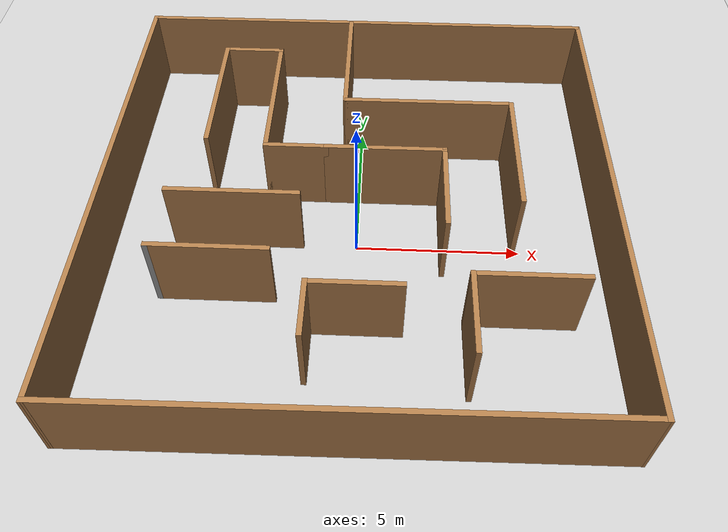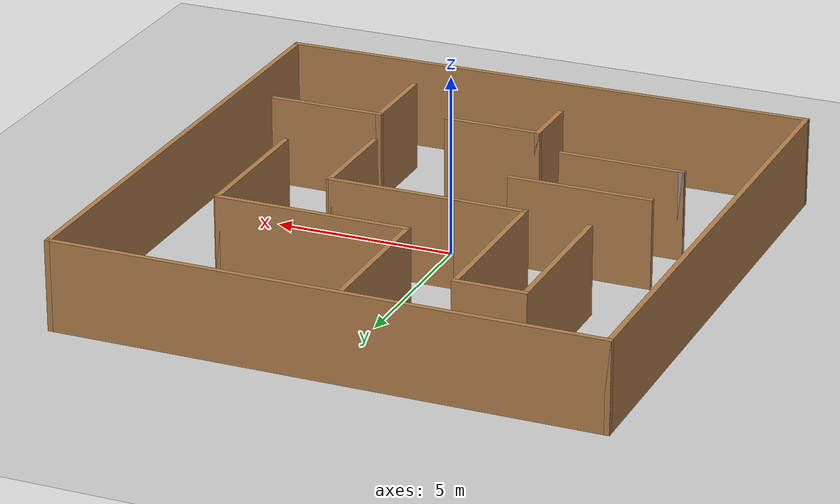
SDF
<sdf version="1.7">
 <world name="default">
  <light name="sun" type="directional">
   <pose>0 0 10 0 -0 0</pose>
   <diffuse>0.8 0.8 0.8 1</diffuse>
   <specular>0.2 0.2 0.2 1</specular>
   <attenuation>
    <range>1000</range>
    <constant>0.9</constant>
    <linear>0.01</linear>
    <quadratic>0.001</quadratic>
   </attenuation>
   <direction>-0.5 0.1 -0.9</direction>
   <spot><inner_angle>0</inner_angle><outer_angle>0</outer_angle><falloff>0</falloff></spot>
  </light>
  <model name="ground_plane">
   <static>1</static>
   <link name="link">
    <collision name="collision">
     <geometry><plane><normal>0 0 1</normal><size>100 100</size></plane></geometry>
     <surface><friction><ode><mu>100</mu><mu2>50</mu2></ode></friction></surface>
    </collision>
    <visual name="visual">
     <cast_shadows>0</cast_shadows>
     <geometry><plane><normal>0 0 1</normal><size>100 100</size></plane></geometry>
     <material>
      <script><uri>file://media/materials/scripts/gazebo.material</uri><name>Gazebo/Grey</name></script>
     </material>
    </visual>
   </link>
  </model>
  <gravity>0 0 -9.8</gravity>
  <magnetic_field>6e-06 2.3e-05 -4.2e-05</magnetic_field>
  <atmosphere type="adiabatic"/>
  <physics type="ode">
   <max_step_size>0.001</max_step_size>
   <real_time_factor>1</real_time_factor>
   <real_time_update_rate>1000</real_time_update_rate>
  </physics>
  <scene><ambient>0.4 0.4 0.4 1</ambient><background>0.7 0.7 0.7 1</background><shadows>1</shadows></scene>
  <spherical_coordinates>
   <surface_model>EARTH_WGS84</surface_model>
   <latitude_deg>0</latitude_deg>
   <longitude_deg>0</longitude_deg>
   <elevation>0</elevation>
   <heading_deg>0</heading_deg>
  </spherical_coordinates>
  <model name="world_15x15">
   <pose>-0.030758 0.768555 0 0 -0 0</pose>
   <link name="Wall_15">
    <collision name="Wall_15_Collision">
     <geometry><box><size>15.15 0.15 2.5</size></box></geometry>
     <pose>0 0 1.25 0 -0 0</pose>
    </collision>
    <visual name="Wall_15_Visual">
     <pose>0 0 1.25 0 -0 0</pose>
     <geometry><box><size>15.15 0.15 2.5</size></box></geometry>
     <material>
      <script><uri>file://media/materials/scripts/gazebo.material</uri><name>Gazebo/Wood</name></script>
      <ambient>1 1 1 1</ambient>
     </material>
     <meta><layer>0</layer></meta>
    </visual>
    <pose>0 7.50037 0 0 -0 0</pose>
   </link>
   <link name="Wall_22">
    <collision name="Wall_22_Collision">
     <geometry><box><size>15 0.15 2.5</size></box></geometry>
     <pose>0 0 1.25 0 -0 0</pose>
    </collision>
    <visual name="Wall_22_Visual">
     <pose>0 0 1.25 0 -0 0</pose>
     <geometry><box><size>15 0.15 2.5</size></box></geometry>
     <material>
      <script><uri>file://media/materials/scripts/gazebo.material</uri><name>Gazebo/Wood</name></script>
      <ambient>1 1 1 1</ambient>
     </material>
     <meta><layer>0</layer></meta>
    </visual>
    <pose>7.5 0.075373 0 0 -0 -1.5708</pose>
   </link>
   <link name="Wall_24">
    <collision name="Wall_24_Collision">
     <geometry><box><size>15.1508 0.15 2.5</size></box></geometry>
     <pose>0 0 1.25 0 -0 0</pose>
    </collision>
    <visual name="Wall_24_Visual">
     <pose>0 0 1.25 0 -0 0</pose>
     <geometry><box><size>15.1508 0.15 2.5</size></box></geometry>
     <material>
      <script><uri>file://media/materials/scripts/gazebo.material</uri><name>Gazebo/Wood</name></script>
      <ambient>1 1 1 1</ambient>
     </material>
     <meta><layer>0</layer></meta>
    </visual>
    <pose>0 -7.42463 0 0 -0 -3.13159</pose>
   </link>
   <link name="Wall_26">
    <collision name="Wall_26_Collision">
     <geometry><box><size>15.15 0.15 2.5</size></box></geometry>
     <pose>0 0 1.25 0 -0 0</pose>
    </collision>
    <visual name="Wall_26_Visual">
     <pose>0 0 1.25 0 -0 0</pose>
     <geometry><box><size>15.15 0.15 2.5</size></box></geometry>
     <material>
      <script><uri>file://media/materials/scripts/gazebo.material</uri><name>Gazebo/Wood</name></script>
      <ambient>1 1 1 1</ambient>
     </material>
     <meta><layer>0</layer></meta>
    </visual>
    <pose>-7.5 0.000373 0 0 -0 -1.5708</pose>
   </link>
   <link name="Wall_28">
    <collision name="Wall_28_Collision">
     <geometry><box><size>4.25 0.15 2.5</size></box></geometry>
     <pose>0 0 1.25 0 -0 0</pose>
    </collision>
    <visual name="Wall_28_Visual">
     <pose>0 0 1.25 0 -0 0</pose>
     <geometry><box><size>4.25 0.15 2.5</size></box></geometry>
     <material>
      <script><uri>file://media/materials/scripts/gazebo.material</uri><name>Gazebo/Wood</name></script>
      <ambient>1 1 1 1</ambient>
     </material>
     <meta><layer>0</layer></meta>
    </visual>
    <pose>-0.496601 5.39757 0 0 -0 -1.5708</pose>
   </link>
   <link name="Wall_29">
    <collision name="Wall_29_Collision">
     <geometry><box><size>5.40695 0.15 2.5</size></box></geometry>
     <pose>0 0 1.25 0 -0 0</pose>
    </collision>
    <visual name="Wall_29_Visual">
     <pose>0 0 1.25 0 -0 0</pose>
     <geometry><box><size>5.40695 0.15 2.5</size></box></geometry>
     <material>
      <script><uri>file://media/materials/scripts/gazebo.material</uri><name>Gazebo/Wood</name></script>
      <ambient>1 1 1 1</ambient>
     </material>
     <meta><layer>0</layer></meta>
    </visual>
    <pose>2.1784 3.34757 0 0 -0 0</pose>
   </link>
   <link name="Wall_30">
    <collision name="Wall_30_Collision">
     <geometry><box><size>4.25 0.15 2.5</size></box></geometry>
     <pose>0 0 1.25 0 -0 0</pose>
    </collision>
    <visual name="Wall_30_Visual">
     <pose>0 0 1.25 0 -0 0</pose>
     <geometry><box><size>4.25 0.15 2.5</size></box></geometry>
     <material>
      <script><uri>file://media/materials/scripts/gazebo.material</uri><name>Gazebo/Wood</name></script>
      <ambient>1 1 1 1</ambient>
     </material>
     <meta><layer>0</layer></meta>
    </visual>
    <pose>4.80687 1.29757 0 0 -0 -1.5708</pose>
   </link>
   <link name="Wall_37">
    <collision name="Wall_37_Collision">
     <geometry><box><size>2.75 0.15 2.5</size></box></geometry>
     <pose>0 0 1.25 0 -0 0</pose>
    </collision>
    <visual name="Wall_37_Visual">
     <pose>0 0 1.25 0 -0 0</pose>
     <geometry><box><size>2.75 0.15 2.5</size></box></geometry>
     <material>
      <script><uri>file://media/materials/scripts/gazebo.material</uri><name>Gazebo/Wood</name></script>
      <ambient>1 1 1 1</ambient>
     </material>
     <meta><layer>0</layer></meta>
    </visual>
    <pose>0.10134 -3.83432 0 0 -0 3.14159</pose>
   </link>
   <link name="Wall_38">
    <collision name="Wall_38_Collision">
     <geometry><box><size>1.75 0.15 2.5</size></box></geometry>
     <pose>0 0 1.25 0 -0 0</pose>
    </collision>
    <visual name="Wall_38_Visual">
     <pose>0 0 1.25 0 -0 0</pose>
     <geometry><box><size>1.75 0.15 2.5</size></box></geometry>
     <material>
      <script><uri>file://media/materials/scripts/gazebo.material</uri><name>Gazebo/Wood</name></script>
      <ambient>1 1 1 1</ambient>
     </material>
     <meta><layer>0</layer></meta>
    </visual>
    <pose>-1.19866 -4.63432 0 0 -0 -1.5708</pose>
   </link>
   <link name="Wall_43">
    <collision name="Wall_43_Collision">
     <geometry><box><size>3.25 0.15 2.5</size></box></geometry>
     <pose>0 0 1.25 0 -0 0</pose>
    </collision>
    <visual name="Wall_43_Visual">
     <pose>0 0 1.25 0 -0 0</pose>
     <geometry><box><size>3.25 0.15 2.5</size></box></geometry>
     <material>
      <script><uri>file://media/materials/scripts/gazebo.material</uri><name>Gazebo/Wood</name></script>
      <ambient>1 1 1 1</ambient>
     </material>
     <meta><layer>0</layer></meta>
    </visual>
    <pose>4.78432 -3.39453 0 0 -0 3.14159</pose>
   </link>
   <link name="Wall_44">
    <collision name="Wall_44_Collision">
     <geometry><box><size>2.5 0.15 2.5</size></box></geometry>
     <pose>0 0 1.25 0 -0 0</pose>
    </collision>
    <visual name="Wall_44_Visual">
     <pose>0 0 1.25 0 -0 0</pose>
     <geometry><box><size>2.5 0.15 2.5</size></box></geometry>
     <material>
      <script><uri>file://media/materials/scripts/gazebo.material</uri><name>Gazebo/Wood</name></script>
      <ambient>1 1 1 1</ambient>
     </material>
     <meta><layer>0</layer></meta>
    </visual>
    <pose>3.23432 -4.56952 0 0 -0 -1.5708</pose>
   </link>
   <link name="Wall_46">
    <collision name="Wall_46_Collision">
     <geometry><box><size>3.5 0.15 2.5</size></box></geometry>
     <pose>0 0 1.25 0 -0 0</pose>
    </collision>
    <visual name="Wall_46_Visual">
     <pose>0 0 1.25 0 -0 0</pose>
     <geometry><box><size>3.5 0.15 2.5</size></box></geometry>
     <material>
      <script><uri>file://media/materials/scripts/gazebo.material</uri><name>Gazebo/Wood</name></script>
      <ambient>1 1 1 1</ambient>
     </material>
     <meta><layer>0</layer></meta>
    </visual>
    <pose>-3.97436 -2.79611 0 0 -0 3.14159</pose>
   </link>
   <link name="Wall_47">
    <collision name="Wall_47_Collision">
     <geometry><box><size>0.16 0.15 2.5</size></box></geometry>
     <pose>0 0 1.25 0 -0 0</pose>
    </collision>
    <visual name="Wall_47_Visual">
     <pose>0 0 1.25 0 -0 0</pose>
     <geometry><box><size>0.16 0.15 2.5</size></box></geometry>
     <material>
      <script><uri>file://media/materials/scripts/gazebo.material</uri><name>Gazebo/Grey</name></script>
      <ambient>1 1 1 1</ambient>
     </material>
     <meta><layer>0</layer></meta>
    </visual>
    <pose>-5.64436 -2.79611 0 0 -0 0</pose>
   </link>
   <link name="Wall_49">
    <collision name="Wall_49_Collision">
     <geometry><box><size>4.5 0.15 2.5</size></box></geometry>
     <pose>0 0 1.25 0 -0 0</pose>
    </collision>
    <visual name="Wall_49_Visual">
     <pose>0 0 1.25 0 -0 0</pose>
     <geometry><box><size>4.5 0.15 2.5</size></box></geometry>
     <material>
      <script><uri>file://media/materials/scripts/gazebo.material</uri><name>Gazebo/Wood</name></script>
      <ambient>1 1 1 1</ambient>
     </material>
     <meta><layer>0</layer></meta>
    </visual>
    <pose>-4.67208 3.61256 0 0 -0 1.5708</pose>
   </link>
   <link name="Wall_50">
    <collision name="Wall_50_Collision">
     <geometry><box><size>2 0.15 2.5</size></box></geometry>
     <pose>0 0 1.25 0 -0 0</pose>
    </collision>
    <visual name="Wall_50_Visual">
     <pose>0 0 1.25 0 -0 0</pose>
     <geometry><box><size>2 0.15 2.5</size></box></geometry>
     <material>
      <script><uri>file://media/materials/scripts/gazebo.material</uri><name>Gazebo/Wood</name></script>
      <ambient>1 1 1 1</ambient>
     </material>
     <meta><layer>0</layer></meta>
    </visual>
    <pose>-3.74708 5.78756 0 0 -0 0</pose>
   </link>
   <link name="Wall_51">
    <collision name="Wall_51_Collision">
     <geometry><box><size>4.75 0.15 2.5</size></box></geometry>
     <pose>0 0 1.25 0 -0 0</pose>
    </collision>
    <visual name="Wall_51_Visual">
     <pose>0 0 1.25 0 -0 0</pose>
     <geometry><box><size>4.75 0.15 2.5</size></box></geometry>
     <material>
      <script><uri>file://media/materials/scripts/gazebo.material</uri><name>Gazebo/Wood</name></script>
      <ambient>1 1 1 1</ambient>
     </material>
     <meta><layer>0</layer></meta>
    </visual>
    <pose>-2.82208 3.48756 0 0 -0 -1.5708</pose>
   </link>
   <link name="Wall_52">
    <collision name="Wall_52_Collision">
     <geometry><box><size>2 0.15 2.5</size></box></geometry>
     <pose>0 0 1.25 0 -0 0</pose>
    </collision>
    <visual name="Wall_52_Visual">
     <pose>0 0 1.25 0 -0 0</pose>
     <geometry><box><size>2 0.15 2.5</size></box></geometry>
     <material>
      <script><uri>file://media/materials/scripts/gazebo.material</uri><name>Gazebo/Wood</name></script>
      <ambient>1 1 1 1</ambient>
     </material>
     <meta><layer>0</layer></meta>
    </visual>
    <pose>-1.89708 1.18756 0 0 -0 0</pose>
   </link>
   <link name="Wall_53">
    <collision name="Wall_53_Collision">
     <geometry><box><size>3.75 0.15 2.5</size></box></geometry>
     <pose>0 0 1.25 0 -0 0</pose>
    </collision>
    <visual name="Wall_53_Visual">
     <pose>0 0 1.25 0 -0 0</pose>
     <geometry><box><size>3.75 0.15 2.5</size></box></geometry>
     <material>
      <script><uri>file://media/materials/scripts/gazebo.material</uri><name>Gazebo/Wood</name></script>
      <ambient>1 1 1 1</ambient>
     </material>
     <meta><layer>0</layer></meta>
    </visual>
    <pose>0.827921 1.18756 0 0 -0 0</pose>
   </link>
   <link name="Wall_54">
    <collision name="Wall_54_Collision">
     <geometry><box><size>3 0.15 2.5</size></box></geometry>
     <pose>0 0 1.25 0 -0 0</pose>
    </collision>
    <visual name="Wall_54_Visual">
     <pose>0 0 1.25 0 -0 0</pose>
     <geometry><box><size>3 0.15 2.5</size></box></geometry>
     <material>
      <script><uri>file://media/materials/scripts/gazebo.material</uri><name>Gazebo/Wood</name></script>
      <ambient>1 1 1 1</ambient>
     </material>
     <meta><layer>0</layer></meta>
    </visual>
    <pose>2.62792 -0.237438 0 0 -0 -1.5708</pose>
   </link>
   <link name="Wall_56">
    <collision name="Wall_56_Collision">
     <geometry><box><size>4 0.15 2.5</size></box></geometry>
     <pose>0 0 1.25 0 -0 0</pose>
    </collision>
    <visual name="Wall_56_Visual">
     <pose>0 0 1.25 0 -0 0</pose>
     <geometry><box><size>4 0.15 2.5</size></box></geometry>
     <material>
      <script><uri>file://media/materials/scripts/gazebo.material</uri><name>Gazebo/Wood</name></script>
      <ambient>1 1 1 1</ambient>
     </material>
     <meta><layer>0</layer></meta>
    </visual>
    <pose>-3.58451 -0.749062 0 0 -0 0</pose>
   </link>
   <static>1</static>
  </model>
 </world>
</sdf>
